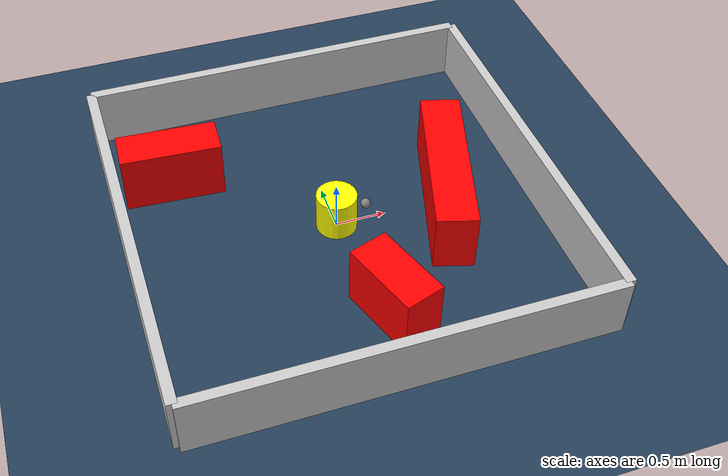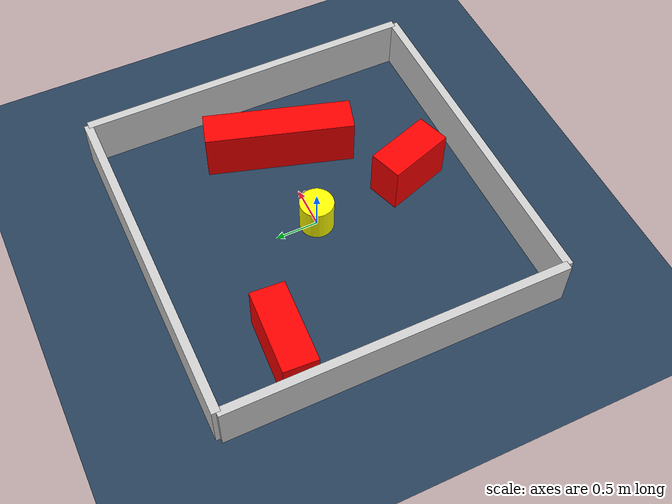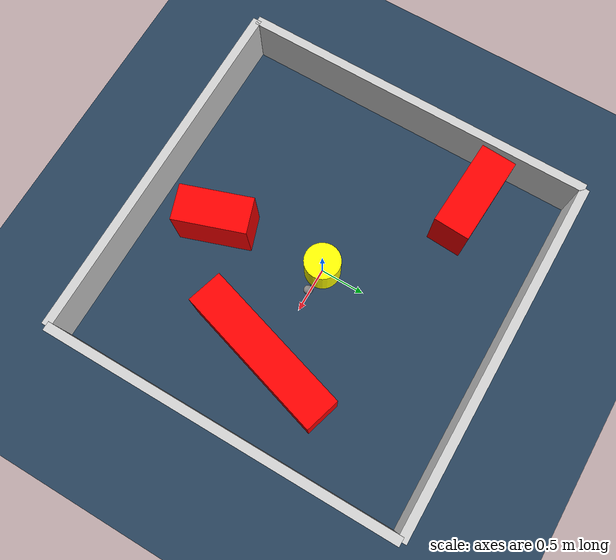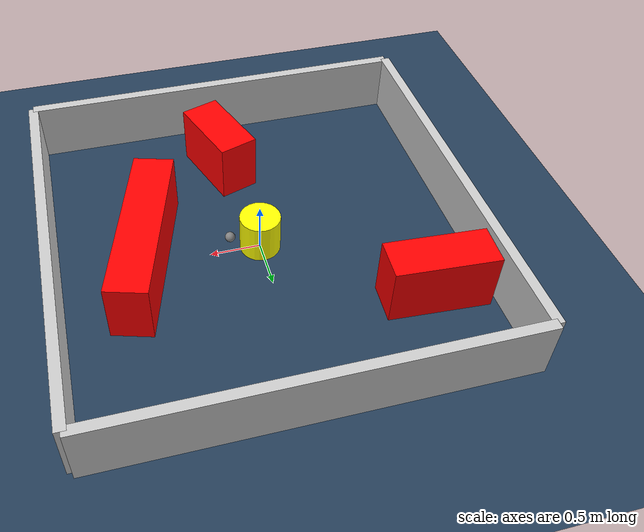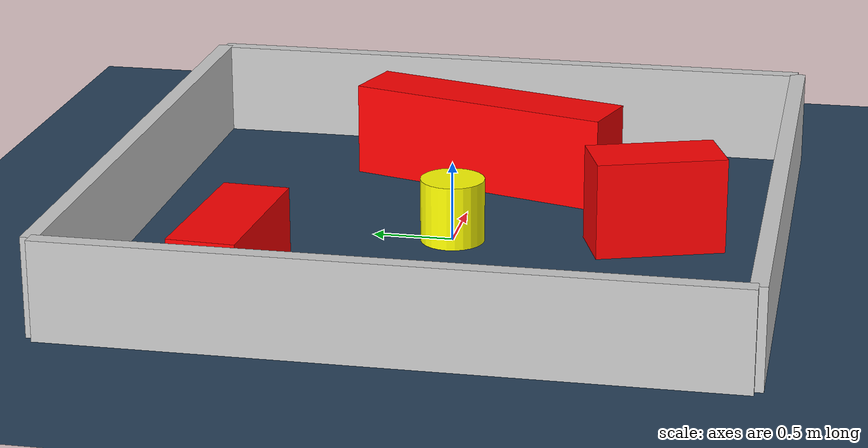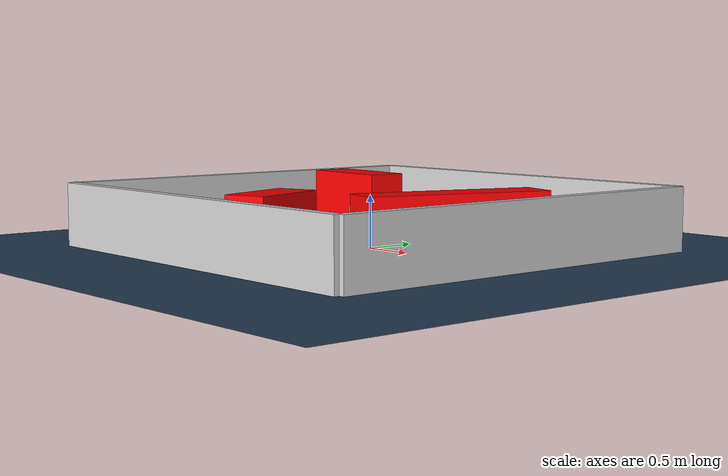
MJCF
<?xml version="1.0" ?>
<mujoco model="generated_environment">
  <option timestep="0.01" integrator="RK4" cone="elliptic"/>
  <default>
    <geom density="1"/>
  </default>
  <asset>
    <texture builtin="gradient" height="3072" rgb1="0.3 0.5 0.7" rgb2="0 0 0" type="skybox" width="512"/>
    <texture builtin="checker" height="300" mark="edge" markrgb="0.8 0.8 0.8" name="groundplane" rgb1="0.2 0.3 0.4" rgb2="0.1 0.2 0.3" type="2d" width="300"/>
    <material name="groundplane" reflectance="0.2" texrepeat="5 5" texture="groundplane" texuniform="true"/>
    <material name="robot" rgba="0.0 1.0 0.0 1"/>
  </asset>
  <worldbody>
    <light dir="0 0 -1" directional="true" pos="0 0 1.5"/>
    <geom condim="4" friction="1.0 0.005 0.001" material="groundplane" name="floor" size="0 0 0.05" type="plane"/>
    <body name="walls">
      <geom name="wall_1" condim="4" pos="-2.0 0.0 0.3" rgba="0.800000011920929 0.800000011920929 0.800000011920929 1.0" size="0.05 2.0 0.3" type="box"/>
      <geom name="wall_2" condim="4" pos="2.0 0.0 0.3" rgba="0.800000011920929 0.800000011920929 0.800000011920929 1.0" size="0.05 2.0 0.3" type="box"/>
      <geom name="wall_3" condim="4" pos="0.0 -2.0 0.3" rgba="0.800000011920929 0.800000011920929 0.800000011920929 1.0" size="2.0 0.05 0.3" type="box"/>
      <geom name="wall_4" condim="4" pos="0.0 2.0 0.3" rgba="0.800000011920929 0.800000011920929 0.800000011920929 1.0" size="2.0 0.05 0.3" type="box"/>
    </body>
    <body name="robot">
      <joint name="joint_x" type="slide" pos="0 0 0" axis="1 0 0"/>
      <joint name="joint_y" type="slide" pos="0 0 0" axis="0 1 0"/>
      <geom name="robot" type="sphere" pos="0.3 0.0 0.2" size="0.05" mass="5." friction="1.0 0.005 0.0001" condim="4" rgba="0.5 0.5 0.5 1.0"/>
      <site name="sensor_ball"/>
    </body>
    <body name="obstacle_movable_1">
      <geom name="obstacle_movable_1" condim="4" pos="0.0 0.0 0.2" euler="0 0 0.0" friction="1.0 0.005 0.001" rgba="1.0 1.0 0.0 1.0" size="0.2 0.2 0.0" type="cylinder" mass="0.1"/>
      <joint type="free"/>
    </body>
    <body name="obstacle_2_static">
      <geom name="obstacle_2_static" condim="4" pos="1.126537829567425 -0.030592205799542027 0.3" euler="0 0 253.2236735297242" friction="1.0 0.005 0.001" rgba="1 0 0 1" size="0.8720988941589407 0.2 0.3" type="box"/>
    </body>
    <body name="obstacle_3_static">
      <geom name="obstacle_3_static" condim="4" pos="-1.4003018646037517 1.0248795747512391 0.3" euler="0 0 356.747021649254" friction="1.0 0.005 0.001" rgba="1 0 0 1" size="0.49410346128416216 0.2 0.3" type="box"/>
    </body>
    <body name="obstacle_4_static">
      <geom name="obstacle_4_static" condim="4" pos="0.1342241713134893 -1.2368233108951272 0.3" euler="0 0 288.7167789848844" friction="1.0 0.005 0.001" rgba="1 0 0 1" size="0.40356525853840064 0.2 0.3" type="box"/>
    </body>
  </worldbody>
  <actuator>
    <motor name="actuator_x" joint="joint_x" gear="1" ctrlrange="-1 1"/>
    <motor name="actuator_y" joint="joint_y" gear="1" ctrlrange="-1 1"/>
  </actuator>
</mujoco>
